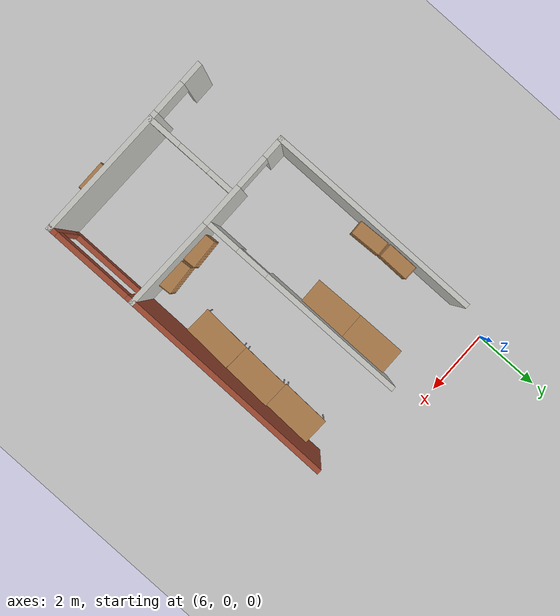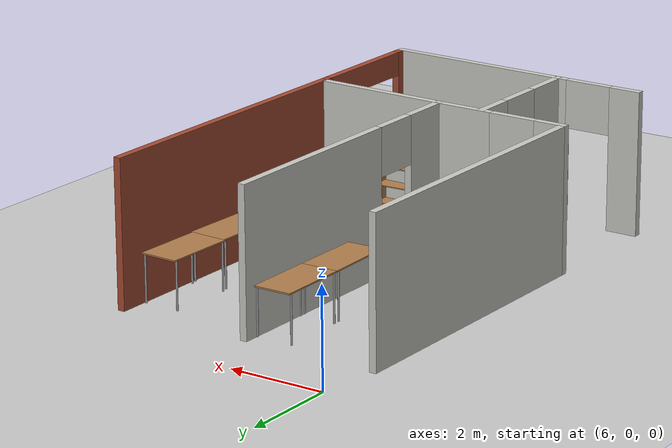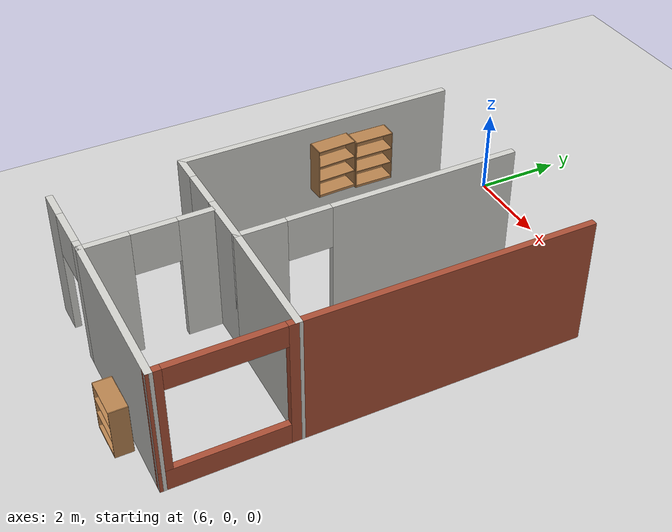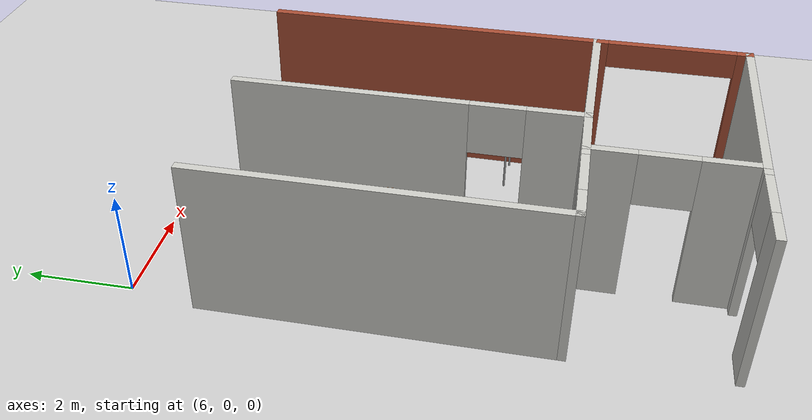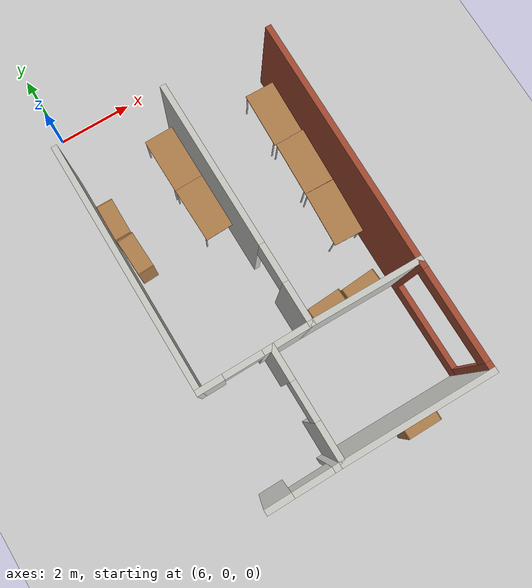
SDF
<sdf version="1.7">
 <world name="default">
  <model name="ground_plane">
   <static>1</static>
   <link name="link">
    <collision name="collision">
     <geometry><plane><normal>0 0 1</normal><size>100 100</size></plane></geometry>
     <surface><friction><ode><mu>100</mu><mu2>50</mu2></ode></friction></surface>
    </collision>
    <visual name="visual">
     <cast_shadows>0</cast_shadows>
     <geometry><plane><normal>0 0 1</normal><size>100 100</size></plane></geometry>
     <material>
      <script><uri>file://media/materials/scripts/gazebo.material</uri><name>Gazebo/Grey</name></script>
     </material>
    </visual>
   </link>
  </model>
  <model name="laboratory_world">
   <pose>0.94037 -7.07852 0 0 -0 0</pose>
   <link name="Wall_11">
    <collision name="Wall_11_Collision">
     <geometry><box><size>6.5 0.15 3</size></box></geometry>
     <pose>0 0 1.5 0 -0 0</pose>
    </collision>
    <visual name="Wall_11_Visual">
     <pose>0 0 1.5 0 -0 0</pose>
     <geometry><box><size>6.5 0.15 3</size></box></geometry>
     <material>
      <script><uri>file://media/materials/scripts/gazebo.material</uri><name>Gazebo/CeilingTiled</name></script>
      <ambient>0.921569 0.807843 0.615686 1</ambient>
     </material>
     <meta><layer>0</layer></meta>
    </visual>
    <pose>4.87322 2.5765 0 0 -0 1.5708</pose>
   </link>
   <link name="Wall_13">
    <pose>6.29822 -0.5985 0 0 -0 0</pose>
    <visual name="Wall_13_Visual_0">
     <pose>-1.1523 0 1.5 0 -0 0</pose>
     <geometry><box><size>0.695403 0.15 3</size></box></geometry>
     <material>
      <script><uri>file://media/materials/scripts/gazebo.material</uri><name>Gazebo/CeilingTiled</name></script>
      <ambient>0.921569 0.807843 0.615686 1</ambient>
     </material>
     <meta><layer>0</layer></meta>
    </visual>
    <collision name="Wall_13_Collision_0">
     <geometry><box><size>0.695403 0.15 3</size></box></geometry>
     <pose>-1.1523 0 1.5 0 -0 0</pose>
    </collision>
    <visual name="Wall_13_Visual_1">
     <pose>0.847702 0 1.5 0 -0 0</pose>
     <geometry><box><size>1.3046 0.15 3</size></box></geometry>
     <material>
      <script><uri>file://media/materials/scripts/gazebo.material</uri><name>Gazebo/CeilingTiled</name></script>
      <ambient>0.921569 0.807843 0.615686 1</ambient>
     </material>
     <meta><layer>0</layer></meta>
    </visual>
    <collision name="Wall_13_Collision_1">
     <geometry><box><size>1.3046 0.15 3</size></box></geometry>
     <pose>0.847702 0 1.5 0 -0 0</pose>
    </collision>
    <visual name="Wall_13_Visual_2">
     <pose>-0.304597 0 2.5 0 -0 0</pose>
     <geometry><box><size>1 0.15 1</size></box></geometry>
     <material>
      <script><uri>file://media/materials/scripts/gazebo.material</uri><name>Gazebo/CeilingTiled</name></script>
      <ambient>0.921569 0.807843 0.615686 1</ambient>
     </material>
     <meta><layer>0</layer></meta>
    </visual>
    <collision name="Wall_13_Collision_2">
     <geometry><box><size>1 0.15 1</size></box></geometry>
     <pose>-0.304597 0 2.5 0 -0 0</pose>
    </collision>
   </link>
   <link name="Wall_14">
    <pose>7.72322 2.5765 0 0 -0 1.5708</pose>
    <visual name="Wall_14_Visual_0">
     <pose>-2.67901 0 1.5 0 -0 0</pose>
     <geometry><box><size>1.14198 0.15 3</size></box></geometry>
     <material>
      <script><uri>file://media/materials/scripts/gazebo.material</uri><name>Gazebo/CeilingTiled</name></script>
      <ambient>0.921569 0.807843 0.615686 1</ambient>
     </material>
     <meta><layer>0</layer></meta>
    </visual>
    <collision name="Wall_14_Collision_0">
     <geometry><box><size>1.14198 0.15 3</size></box></geometry>
     <pose>-2.67901 0 1.5 0 -0 0</pose>
    </collision>
    <visual name="Wall_14_Visual_1">
     <pose>1.07099 0 1.5 0 -0 0</pose>
     <geometry><box><size>4.35802 0.15 3</size></box></geometry>
     <material>
      <script><uri>file://media/materials/scripts/gazebo.material</uri><name>Gazebo/CeilingTiled</name></script>
      <ambient>0.921569 0.807843 0.615686 1</ambient>
     </material>
     <meta><layer>0</layer></meta>
    </visual>
    <collision name="Wall_14_Collision_1">
     <geometry><box><size>4.35802 0.15 3</size></box></geometry>
     <pose>1.07099 0 1.5 0 -0 0</pose>
    </collision>
    <visual name="Wall_14_Visual_2">
     <pose>-1.60802 0 2.5 0 -0 0</pose>
     <geometry><box><size>1 0.15 1</size></box></geometry>
     <material>
      <script><uri>file://media/materials/scripts/gazebo.material</uri><name>Gazebo/CeilingTiled</name></script>
      <ambient>0.921569 0.807843 0.615686 1</ambient>
     </material>
     <meta><layer>0</layer></meta>
    </visual>
    <collision name="Wall_14_Collision_2">
     <geometry><box><size>1 0.15 1</size></box></geometry>
     <pose>-1.60802 0 2.5 0 -0 0</pose>
    </collision>
   </link>
   <link name="Wall_16">
    <collision name="Wall_16_Collision">
     <geometry><box><size>2.95339 0.15 3</size></box></geometry>
     <pose>0 0 1.5 0 -0 0</pose>
    </collision>
    <visual name="Wall_16_Visual">
     <pose>0 0 1.5 0 -0 0</pose>
     <geometry><box><size>2.95339 0.15 3</size></box></geometry>
     <material>
      <script><uri>file://media/materials/scripts/gazebo.material</uri><name>Gazebo/CeilingTiled</name></script>
      <ambient>0.921569 0.807843 0.615686 1</ambient>
     </material>
     <meta><layer>0</layer></meta>
    </visual>
    <pose>9.12472 -0.622 0 0 -0 -0.016766</pose>
   </link>
   <link name="Wall_17">
    <collision name="Wall_17_Collision">
     <geometry><box><size>6.54717 0.15 3</size></box></geometry>
     <pose>0 0 1.5 0 -0 0</pose>
    </collision>
    <visual name="Wall_17_Visual">
     <pose>0 0 1.5 0 -0 0</pose>
     <geometry><box><size>6.54717 0.15 3</size></box></geometry>
     <material>
      <script><uri>file://media/materials/scripts/gazebo.material</uri><name>Gazebo/Bricks</name></script>
      <ambient>0.760784 0.662745 0.627451 1</ambient>
     </material>
     <meta><layer>0</layer></meta>
    </visual>
    <pose>10.5497 2.553 0 0 -0 1.56345</pose>
   </link>
   <link name="Wall_21">
    <pose>10.5262 -2.0705 0 0 -0 -1.5708</pose>
    <visual name="Wall_21_Visual_0">
     <pose>-1.35631 0 1.5 0 -0 0</pose>
     <geometry><box><size>0.287384 0.15 3</size></box></geometry>
     <material>
      <script><uri>file://media/materials/scripts/gazebo.material</uri><name>Gazebo/Bricks</name></script>
      <ambient>0.760784 0.662745 0.627451 1</ambient>
     </material>
     <meta><layer>0</layer></meta>
    </visual>
    <collision name="Wall_21_Collision_0">
     <geometry><box><size>0.287384 0.15 3</size></box></geometry>
     <pose>-1.35631 0 1.5 0 -0 0</pose>
    </collision>
    <visual name="Wall_21_Visual_1">
     <pose>0.143692 0 0.25 0 -0 0</pose>
     <geometry><box><size>2.71262 0.15 0.5</size></box></geometry>
     <material>
      <script><uri>file://media/materials/scripts/gazebo.material</uri><name>Gazebo/Bricks</name></script>
      <ambient>0.760784 0.662745 0.627451 1</ambient>
     </material>
     <meta><layer>0</layer></meta>
    </visual>
    <collision name="Wall_21_Collision_1">
     <geometry><box><size>2.71262 0.15 0.5</size></box></geometry>
     <pose>0.143692 0 0.25 0 -0 0</pose>
    </collision>
    <visual name="Wall_21_Visual_2">
     <pose>1.34369 0 1.75 0 -0 0</pose>
     <geometry><box><size>0.312616 0.15 2.5</size></box></geometry>
     <material>
      <script><uri>file://media/materials/scripts/gazebo.material</uri><name>Gazebo/Bricks</name></script>
      <ambient>0.760784 0.662745 0.627451 1</ambient>
     </material>
     <meta><layer>0</layer></meta>
    </visual>
    <collision name="Wall_21_Collision_2">
     <geometry><box><size>0.312616 0.15 2.5</size></box></geometry>
     <pose>1.34369 0 1.75 0 -0 0</pose>
    </collision>
    <visual name="Wall_21_Visual_3">
     <pose>-0.012616 0 2.75 0 -0 0</pose>
     <geometry><box><size>2.4 0.15 0.5</size></box></geometry>
     <material>
      <script><uri>file://media/materials/scripts/gazebo.material</uri><name>Gazebo/Bricks</name></script>
      <ambient>0.760784 0.662745 0.627451 1</ambient>
     </material>
     <meta><layer>0</layer></meta>
    </visual>
    <collision name="Wall_21_Collision_3">
     <geometry><box><size>2.4 0.15 0.5</size></box></geometry>
     <pose>-0.012616 0 2.75 0 -0 0</pose>
    </collision>
   </link>
   <link name="Wall_22">
    <collision name="Wall_22_Collision">
     <geometry><box><size>3.95329 0.15 3</size></box></geometry>
     <pose>0 0 1.5 0 -0 0</pose>
    </collision>
    <visual name="Wall_22_Visual">
     <pose>0 0 1.5 0 -0 0</pose>
     <geometry><box><size>3.95329 0.15 3</size></box></geometry>
     <material>
      <script><uri>file://media/materials/scripts/gazebo.material</uri><name>Gazebo/CeilingTiled</name></script>
      <ambient>0.921569 0.807843 0.615686 1</ambient>
     </material>
     <meta><layer>0</layer></meta>
    </visual>
    <pose>8.62472 -3.472 0 0 -0 3.12923</pose>
   </link>
   <link name="Wall_23">
    <pose>6.72322 -2.0235 0 0 -0 1.5708</pose>
    <visual name="Wall_23_Visual_0">
     <pose>-0.956509 0 1.5 0 -0 0</pose>
     <geometry><box><size>1.08698 0.15 3</size></box></geometry>
     <material>
      <script><uri>file://media/materials/scripts/gazebo.material</uri><name>Gazebo/CeilingTiled</name></script>
      <ambient>0.921569 0.807843 0.615686 1</ambient>
     </material>
     <meta><layer>0</layer></meta>
    </visual>
    <collision name="Wall_23_Collision_0">
     <geometry><box><size>1.08698 0.15 3</size></box></geometry>
     <pose>-0.956509 0 1.5 0 -0 0</pose>
    </collision>
    <visual name="Wall_23_Visual_1">
     <pose>1.04349 0 1.5 0 -0 0</pose>
     <geometry><box><size>0.913017 0.15 3</size></box></geometry>
     <material>
      <script><uri>file://media/materials/scripts/gazebo.material</uri><name>Gazebo/CeilingTiled</name></script>
      <ambient>0.921569 0.807843 0.615686 1</ambient>
     </material>
     <meta><layer>0</layer></meta>
    </visual>
    <collision name="Wall_23_Collision_1">
     <geometry><box><size>0.913017 0.15 3</size></box></geometry>
     <pose>1.04349 0 1.5 0 -0 0</pose>
    </collision>
    <visual name="Wall_23_Visual_2">
     <pose>0.086983 0 2.5 0 -0 0</pose>
     <geometry><box><size>1 0.15 1</size></box></geometry>
     <material>
      <script><uri>file://media/materials/scripts/gazebo.material</uri><name>Gazebo/CeilingTiled</name></script>
      <ambient>0.921569 0.807843 0.615686 1</ambient>
     </material>
     <meta><layer>0</layer></meta>
    </visual>
    <collision name="Wall_23_Collision_2">
     <geometry><box><size>1 0.15 1</size></box></geometry>
     <pose>0.086983 0 2.5 0 -0 0</pose>
    </collision>
   </link>
   <link name="Wall_42">
    <pose>5.79822 -3.4485 0 0 -0 0</pose>
    <visual name="Wall_42_Visual_0">
     <pose>-0.658719 0 1.5 0 -0 0</pose>
     <geometry><box><size>0.682562 0.15 3</size></box></geometry>
     <material>
      <script><uri>file://media/materials/scripts/gazebo.material</uri><name>Gazebo/CeilingTiled</name></script>
      <ambient>0.921569 0.807843 0.615686 1</ambient>
     </material>
     <meta><layer>0</layer></meta>
    </visual>
    <collision name="Wall_42_Collision_0">
     <geometry><box><size>0.682562 0.15 3</size></box></geometry>
     <pose>-0.658719 0 1.5 0 -0 0</pose>
    </collision>
    <visual name="Wall_42_Visual_1">
     <pose>0.841281 0 1.5 0 -0 0</pose>
     <geometry><box><size>0.317438 0.15 3</size></box></geometry>
     <material>
      <script><uri>file://media/materials/scripts/gazebo.material</uri><name>Gazebo/CeilingTiled</name></script>
      <ambient>0.921569 0.807843 0.615686 1</ambient>
     </material>
     <meta><layer>0</layer></meta>
    </visual>
    <collision name="Wall_42_Collision_1">
     <geometry><box><size>0.317438 0.15 3</size></box></geometry>
     <pose>0.841281 0 1.5 0 -0 0</pose>
    </collision>
    <visual name="Wall_42_Visual_2">
     <pose>0.182562 0 2.5 0 -0 0</pose>
     <geometry><box><size>1 0.15 1</size></box></geometry>
     <material>
      <script><uri>file://media/materials/scripts/gazebo.material</uri><name>Gazebo/CeilingTiled</name></script>
      <ambient>0.921569 0.807843 0.615686 1</ambient>
     </material>
     <meta><layer>0</layer></meta>
    </visual>
    <collision name="Wall_42_Collision_2">
     <geometry><box><size>1 0.15 1</size></box></geometry>
     <pose>0.182562 0 2.5 0 -0 0</pose>
    </collision>
   </link>
   <static>1</static>
  </model>
  <model name="bookshelf_5">
   <static>1</static>
   <link name="link">
    <inertial><mass>1</mass></inertial>
    <collision name="back">
     <pose>0 0.005 0.6 0 -0 0</pose>
     <geometry><box><size>0.9 0.01 1.2</size></box></geometry>
    </collision>
    <visual name="visual1">
     <pose>0 0.005 0.6 0 -0 0</pose>
     <geometry><box><size>0.9 0.01 1.2</size></box></geometry>
     <material>
      <script><uri>file://media/materials/scripts/gazebo.material</uri><name>Gazebo/Wood</name></script>
     </material>
    </visual>
    <collision name="left_side">
     <pose>0.45 -0.195 0.6 0 -0 0</pose>
     <geometry><box><size>0.02 0.4 1.2</size></box></geometry>
    </collision>
    <visual name="visual2">
     <pose>0.45 -0.195 0.6 0 -0 0</pose>
     <geometry><box><size>0.02 0.4 1.2</size></box></geometry>
     <material>
      <script><uri>file://media/materials/scripts/gazebo.material</uri><name>Gazebo/Wood</name></script>
     </material>
    </visual>
    <collision name="right_side">
     <pose>-0.45 -0.195 0.6 0 -0 0</pose>
     <geometry><box><size>0.02 0.4 1.2</size></box></geometry>
    </collision>
    <visual name="visual3">
     <pose>-0.45 -0.195 0.6 0 -0 0</pose>
     <geometry><box><size>0.02 0.4 1.2</size></box></geometry>
     <material>
      <script><uri>file://media/materials/scripts/gazebo.material</uri><name>Gazebo/Wood</name></script>
     </material>
    </visual>
    <collision name="bottom">
     <pose>0 -0.195 0.03 0 -0 0</pose>
     <geometry><box><size>0.88 0.4 0.06</size></box></geometry>
    </collision>
    <visual name="visual4">
     <pose>0 -0.195 0.03 0 -0 0</pose>
     <geometry><box><size>0.88 0.4 0.06</size></box></geometry>
     <material>
      <script><uri>file://media/materials/scripts/gazebo.material</uri><name>Gazebo/Wood</name></script>
     </material>
    </visual>
    <collision name="top">
     <pose>0 -0.195 1.19 0 -0 0</pose>
     <geometry><box><size>0.88 0.4 0.02</size></box></geometry>
    </collision>
    <visual name="visual5">
     <pose>0 -0.195 1.19 0 -0 0</pose>
     <geometry><box><size>0.88 0.4 0.02</size></box></geometry>
     <material>
      <script><uri>file://media/materials/scripts/gazebo.material</uri><name>Gazebo/Wood</name></script>
     </material>
    </visual>
    <collision name="low_shelf">
     <pose>0 -0.195 0.43 0 -0 0</pose>
     <geometry><box><size>0.88 0.4 0.02</size></box></geometry>
    </collision>
    <visual name="visual6">
     <pose>0 -0.195 0.43 0 -0 0</pose>
     <geometry><box><size>0.88 0.4 0.02</size></box></geometry>
     <material>
      <script><uri>file://media/materials/scripts/gazebo.material</uri><name>Gazebo/Wood</name></script>
     </material>
    </visual>
    <collision name="high_shelf">
     <pose>0 -0.195 0.8 0 -0 0</pose>
     <geometry><box><size>0.88 0.4 0.02</size></box></geometry>
    </collision>
    <visual name="visual7">
     <pose>0 -0.195 0.8 0 -0 0</pose>
     <geometry><box><size>0.88 0.4 0.02</size></box></geometry>
     <material>
      <script><uri>file://media/materials/scripts/gazebo.material</uri><name>Gazebo/Wood</name></script>
     </material>
    </visual>
   </link>
   <pose>5.96495 -4.28667 1.44594 0 -0 1.61052</pose>
  </model>
  <model name="bookshelf_6">
   <static>1</static>
   <link name="link">
    <inertial><mass>1</mass></inertial>
    <collision name="back">
     <pose>0 0.005 0.6 0 -0 0</pose>
     <geometry><box><size>0.9 0.01 1.2</size></box></geometry>
    </collision>
    <visual name="visual1">
     <pose>0 0.005 0.6 0 -0 0</pose>
     <geometry><box><size>0.9 0.01 1.2</size></box></geometry>
     <material>
      <script><uri>file://media/materials/scripts/gazebo.material</uri><name>Gazebo/Wood</name></script>
     </material>
    </visual>
    <collision name="left_side">
     <pose>0.45 -0.195 0.6 0 -0 0</pose>
     <geometry><box><size>0.02 0.4 1.2</size></box></geometry>
    </collision>
    <visual name="visual2">
     <pose>0.45 -0.195 0.6 0 -0 0</pose>
     <geometry><box><size>0.02 0.4 1.2</size></box></geometry>
     <material>
      <script><uri>file://media/materials/scripts/gazebo.material</uri><name>Gazebo/Wood</name></script>
     </material>
    </visual>
    <collision name="right_side">
     <pose>-0.45 -0.195 0.6 0 -0 0</pose>
     <geometry><box><size>0.02 0.4 1.2</size></box></geometry>
    </collision>
    <visual name="visual3">
     <pose>-0.45 -0.195 0.6 0 -0 0</pose>
     <geometry><box><size>0.02 0.4 1.2</size></box></geometry>
     <material>
      <script><uri>file://media/materials/scripts/gazebo.material</uri><name>Gazebo/Wood</name></script>
     </material>
    </visual>
    <collision name="bottom">
     <pose>0 -0.195 0.03 0 -0 0</pose>
     <geometry><box><size>0.88 0.4 0.06</size></box></geometry>
    </collision>
    <visual name="visual4">
     <pose>0 -0.195 0.03 0 -0 0</pose>
     <geometry><box><size>0.88 0.4 0.06</size></box></geometry>
     <material>
      <script><uri>file://media/materials/scripts/gazebo.material</uri><name>Gazebo/Wood</name></script>
     </material>
    </visual>
    <collision name="top">
     <pose>0 -0.195 1.19 0 -0 0</pose>
     <geometry><box><size>0.88 0.4 0.02</size></box></geometry>
    </collision>
    <visual name="visual5">
     <pose>0 -0.195 1.19 0 -0 0</pose>
     <geometry><box><size>0.88 0.4 0.02</size></box></geometry>
     <material>
      <script><uri>file://media/materials/scripts/gazebo.material</uri><name>Gazebo/Wood</name></script>
     </material>
    </visual>
    <collision name="low_shelf">
     <pose>0 -0.195 0.43 0 -0 0</pose>
     <geometry><box><size>0.88 0.4 0.02</size></box></geometry>
    </collision>
    <visual name="visual6">
     <pose>0 -0.195 0.43 0 -0 0</pose>
     <geometry><box><size>0.88 0.4 0.02</size></box></geometry>
     <material>
      <script><uri>file://media/materials/scripts/gazebo.material</uri><name>Gazebo/Wood</name></script>
     </material>
    </visual>
    <collision name="high_shelf">
     <pose>0 -0.195 0.8 0 -0 0</pose>
     <geometry><box><size>0.88 0.4 0.02</size></box></geometry>
    </collision>
    <visual name="visual7">
     <pose>0 -0.195 0.8 0 -0 0</pose>
     <geometry><box><size>0.88 0.4 0.02</size></box></geometry>
     <material>
      <script><uri>file://media/materials/scripts/gazebo.material</uri><name>Gazebo/Wood</name></script>
     </material>
    </visual>
   </link>
   <pose>5.93215 -3.31924 1.37705 0 -0 1.56034</pose>
  </model>
  <model name="bookshelf_7">
   <static>1</static>
   <link name="link">
    <inertial><mass>1</mass></inertial>
    <collision name="back">
     <pose>0 0.005 0.6 0 -0 0</pose>
     <geometry><box><size>0.9 0.01 1.2</size></box></geometry>
    </collision>
    <visual name="visual1">
     <pose>0 0.005 0.6 0 -0 0</pose>
     <geometry><box><size>0.9 0.01 1.2</size></box></geometry>
     <material>
      <script><uri>file://media/materials/scripts/gazebo.material</uri><name>Gazebo/Wood</name></script>
     </material>
    </visual>
    <collision name="left_side">
     <pose>0.45 -0.195 0.6 0 -0 0</pose>
     <geometry><box><size>0.02 0.4 1.2</size></box></geometry>
    </collision>
    <visual name="visual2">
     <pose>0.45 -0.195 0.6 0 -0 0</pose>
     <geometry><box><size>0.02 0.4 1.2</size></box></geometry>
     <material>
      <script><uri>file://media/materials/scripts/gazebo.material</uri><name>Gazebo/Wood</name></script>
     </material>
    </visual>
    <collision name="right_side">
     <pose>-0.45 -0.195 0.6 0 -0 0</pose>
     <geometry><box><size>0.02 0.4 1.2</size></box></geometry>
    </collision>
    <visual name="visual3">
     <pose>-0.45 -0.195 0.6 0 -0 0</pose>
     <geometry><box><size>0.02 0.4 1.2</size></box></geometry>
     <material>
      <script><uri>file://media/materials/scripts/gazebo.material</uri><name>Gazebo/Wood</name></script>
     </material>
    </visual>
    <collision name="bottom">
     <pose>0 -0.195 0.03 0 -0 0</pose>
     <geometry><box><size>0.88 0.4 0.06</size></box></geometry>
    </collision>
    <visual name="visual4">
     <pose>0 -0.195 0.03 0 -0 0</pose>
     <geometry><box><size>0.88 0.4 0.06</size></box></geometry>
     <material>
      <script><uri>file://media/materials/scripts/gazebo.material</uri><name>Gazebo/Wood</name></script>
     </material>
    </visual>
    <collision name="top">
     <pose>0 -0.195 1.19 0 -0 0</pose>
     <geometry><box><size>0.88 0.4 0.02</size></box></geometry>
    </collision>
    <visual name="visual5">
     <pose>0 -0.195 1.19 0 -0 0</pose>
     <geometry><box><size>0.88 0.4 0.02</size></box></geometry>
     <material>
      <script><uri>file://media/materials/scripts/gazebo.material</uri><name>Gazebo/Wood</name></script>
     </material>
    </visual>
    <collision name="low_shelf">
     <pose>0 -0.195 0.43 0 -0 0</pose>
     <geometry><box><size>0.88 0.4 0.02</size></box></geometry>
    </collision>
    <visual name="visual6">
     <pose>0 -0.195 0.43 0 -0 0</pose>
     <geometry><box><size>0.88 0.4 0.02</size></box></geometry>
     <material>
      <script><uri>file://media/materials/scripts/gazebo.material</uri><name>Gazebo/Wood</name></script>
     </material>
    </visual>
    <collision name="high_shelf">
     <pose>0 -0.195 0.8 0 -0 0</pose>
     <geometry><box><size>0.88 0.4 0.02</size></box></geometry>
    </collision>
    <visual name="visual7">
     <pose>0 -0.195 0.8 0 -0 0</pose>
     <geometry><box><size>0.88 0.4 0.02</size></box></geometry>
     <material>
      <script><uri>file://media/materials/scripts/gazebo.material</uri><name>Gazebo/Wood</name></script>
     </material>
    </visual>
   </link>
   <pose>9.42742 -7.66853 0.403393 0 0 -3.08973</pose>
  </model>
  <model name="bookshelf_8">
   <static>1</static>
   <link name="link">
    <inertial><mass>1</mass></inertial>
    <collision name="back">
     <pose>0 0.005 0.6 0 -0 0</pose>
     <geometry><box><size>0.9 0.01 1.2</size></box></geometry>
    </collision>
    <visual name="visual1">
     <pose>0 0.005 0.6 0 -0 0</pose>
     <geometry><box><size>0.9 0.01 1.2</size></box></geometry>
     <material>
      <script><uri>file://media/materials/scripts/gazebo.material</uri><name>Gazebo/Wood</name></script>
     </material>
    </visual>
    <collision name="left_side">
     <pose>0.45 -0.195 0.6 0 -0 0</pose>
     <geometry><box><size>0.02 0.4 1.2</size></box></geometry>
    </collision>
    <visual name="visual2">
     <pose>0.45 -0.195 0.6 0 -0 0</pose>
     <geometry><box><size>0.02 0.4 1.2</size></box></geometry>
     <material>
      <script><uri>file://media/materials/scripts/gazebo.material</uri><name>Gazebo/Wood</name></script>
     </material>
    </visual>
    <collision name="right_side">
     <pose>-0.45 -0.195 0.6 0 -0 0</pose>
     <geometry><box><size>0.02 0.4 1.2</size></box></geometry>
    </collision>
    <visual name="visual3">
     <pose>-0.45 -0.195 0.6 0 -0 0</pose>
     <geometry><box><size>0.02 0.4 1.2</size></box></geometry>
     <material>
      <script><uri>file://media/materials/scripts/gazebo.material</uri><name>Gazebo/Wood</name></script>
     </material>
    </visual>
    <collision name="bottom">
     <pose>0 -0.195 0.03 0 -0 0</pose>
     <geometry><box><size>0.88 0.4 0.06</size></box></geometry>
    </collision>
    <visual name="visual4">
     <pose>0 -0.195 0.03 0 -0 0</pose>
     <geometry><box><size>0.88 0.4 0.06</size></box></geometry>
     <material>
      <script><uri>file://media/materials/scripts/gazebo.material</uri><name>Gazebo/Wood</name></script>
     </material>
    </visual>
    <collision name="top">
     <pose>0 -0.195 1.19 0 -0 0</pose>
     <geometry><box><size>0.88 0.4 0.02</size></box></geometry>
    </collision>
    <visual name="visual5">
     <pose>0 -0.195 1.19 0 -0 0</pose>
     <geometry><box><size>0.88 0.4 0.02</size></box></geometry>
     <material>
      <script><uri>file://media/materials/scripts/gazebo.material</uri><name>Gazebo/Wood</name></script>
     </material>
    </visual>
    <collision name="low_shelf">
     <pose>0 -0.195 0.43 0 -0 0</pose>
     <geometry><box><size>0.88 0.4 0.02</size></box></geometry>
    </collision>
    <visual name="visual6">
     <pose>0 -0.195 0.43 0 -0 0</pose>
     <geometry><box><size>0.88 0.4 0.02</size></box></geometry>
     <material>
      <script><uri>file://media/materials/scripts/gazebo.material</uri><name>Gazebo/Wood</name></script>
     </material>
    </visual>
    <collision name="high_shelf">
     <pose>0 -0.195 0.8 0 -0 0</pose>
     <geometry><box><size>0.88 0.4 0.02</size></box></geometry>
    </collision>
    <visual name="visual7">
     <pose>0 -0.195 0.8 0 -0 0</pose>
     <geometry><box><size>0.88 0.4 0.02</size></box></geometry>
     <material>
      <script><uri>file://media/materials/scripts/gazebo.material</uri><name>Gazebo/Wood</name></script>
     </material>
    </visual>
   </link>
   <pose>10.389 -7.68331 0.380417 0 0 -3.07707</pose>
  </model>
  <model name="bookshelf_10">
   <static>1</static>
   <link name="link">
    <inertial><mass>1</mass></inertial>
    <collision name="back">
     <pose>0 0.005 0.6 0 -0 0</pose>
     <geometry><box><size>0.9 0.01 1.2</size></box></geometry>
    </collision>
    <visual name="visual1">
     <pose>0 0.005 0.6 0 -0 0</pose>
     <geometry><box><size>0.9 0.01 1.2</size></box></geometry>
     <material>
      <script><uri>file://media/materials/scripts/gazebo.material</uri><name>Gazebo/Wood</name></script>
     </material>
    </visual>
    <collision name="left_side">
     <pose>0.45 -0.195 0.6 0 -0 0</pose>
     <geometry><box><size>0.02 0.4 1.2</size></box></geometry>
    </collision>
    <visual name="visual2">
     <pose>0.45 -0.195 0.6 0 -0 0</pose>
     <geometry><box><size>0.02 0.4 1.2</size></box></geometry>
     <material>
      <script><uri>file://media/materials/scripts/gazebo.material</uri><name>Gazebo/Wood</name></script>
     </material>
    </visual>
    <collision name="right_side">
     <pose>-0.45 -0.195 0.6 0 -0 0</pose>
     <geometry><box><size>0.02 0.4 1.2</size></box></geometry>
    </collision>
    <visual name="visual3">
     <pose>-0.45 -0.195 0.6 0 -0 0</pose>
     <geometry><box><size>0.02 0.4 1.2</size></box></geometry>
     <material>
      <script><uri>file://media/materials/scripts/gazebo.material</uri><name>Gazebo/Wood</name></script>
     </material>
    </visual>
    <collision name="bottom">
     <pose>0 -0.195 0.03 0 -0 0</pose>
     <geometry><box><size>0.88 0.4 0.06</size></box></geometry>
    </collision>
    <visual name="visual4">
     <pose>0 -0.195 0.03 0 -0 0</pose>
     <geometry><box><size>0.88 0.4 0.06</size></box></geometry>
     <material>
      <script><uri>file://media/materials/scripts/gazebo.material</uri><name>Gazebo/Wood</name></script>
     </material>
    </visual>
    <collision name="top">
     <pose>0 -0.195 1.19 0 -0 0</pose>
     <geometry><box><size>0.88 0.4 0.02</size></box></geometry>
    </collision>
    <visual name="visual5">
     <pose>0 -0.195 1.19 0 -0 0</pose>
     <geometry><box><size>0.88 0.4 0.02</size></box></geometry>
     <material>
      <script><uri>file://media/materials/scripts/gazebo.material</uri><name>Gazebo/Wood</name></script>
     </material>
    </visual>
    <collision name="low_shelf">
     <pose>0 -0.195 0.43 0 -0 0</pose>
     <geometry><box><size>0.88 0.4 0.02</size></box></geometry>
    </collision>
    <visual name="visual6">
     <pose>0 -0.195 0.43 0 -0 0</pose>
     <geometry><box><size>0.88 0.4 0.02</size></box></geometry>
     <material>
      <script><uri>file://media/materials/scripts/gazebo.material</uri><name>Gazebo/Wood</name></script>
     </material>
    </visual>
    <collision name="high_shelf">
     <pose>0 -0.195 0.8 0 -0 0</pose>
     <geometry><box><size>0.88 0.4 0.02</size></box></geometry>
    </collision>
    <visual name="visual7">
     <pose>0 -0.195 0.8 0 -0 0</pose>
     <geometry><box><size>0.88 0.4 0.02</size></box></geometry>
     <material>
      <script><uri>file://media/materials/scripts/gazebo.material</uri><name>Gazebo/Wood</name></script>
     </material>
    </visual>
   </link>
   <pose>9.89039 -10.7082 0 0 -0 0</pose>
  </model>
  <model name="table_4">
   <static>1</static>
   <link name="link">
    <collision name="surface">
     <pose>0 0 1 0 -0 0</pose>
     <geometry><box><size>1.5 0.8 0.03</size></box></geometry>
     <surface><friction><ode><mu>0.6</mu><mu2>0.6</mu2></ode></friction></surface>
    </collision>
    <visual name="visual1">
     <pose>0 0 1 0 -0 0</pose>
     <geometry><box><size>1.5 0.8 0.03</size></box></geometry>
     <material>
      <script><uri>file://media/materials/scripts/gazebo.material</uri><name>Gazebo/Wood</name></script>
     </material>
    </visual>
    <collision name="front_left_leg">
     <pose>0.68 0.38 0.5 0 -0 0</pose>
     <geometry><cylinder><radius>0.02</radius><length>1</length></cylinder></geometry>
    </collision>
    <visual name="front_left_leg">
     <pose>0.68 0.38 0.5 0 -0 0</pose>
     <geometry><cylinder><radius>0.02</radius><length>1</length></cylinder></geometry>
     <material>
      <script><uri>file://media/materials/scripts/gazebo.material</uri><name>Gazebo/Grey</name></script>
     </material>
    </visual>
    <collision name="front_right_leg">
     <pose>0.68 -0.38 0.5 0 -0 0</pose>
     <geometry><cylinder><radius>0.02</radius><length>1</length></cylinder></geometry>
    </collision>
    <visual name="front_right_leg">
     <pose>0.68 -0.38 0.5 0 -0 0</pose>
     <geometry><cylinder><radius>0.02</radius><length>1</length></cylinder></geometry>
     <material>
      <script><uri>file://media/materials/scripts/gazebo.material</uri><name>Gazebo/Grey</name></script>
     </material>
    </visual>
    <collision name="back_right_leg">
     <pose>-0.68 -0.38 0.5 0 -0 0</pose>
     <geometry><cylinder><radius>0.02</radius><length>1</length></cylinder></geometry>
    </collision>
    <visual name="back_right_leg">
     <pose>-0.68 -0.38 0.5 0 -0 0</pose>
     <geometry><cylinder><radius>0.02</radius><length>1</length></cylinder></geometry>
     <material>
      <script><uri>file://media/materials/scripts/gazebo.material</uri><name>Gazebo/Grey</name></script>
     </material>
    </visual>
    <collision name="back_left_leg">
     <pose>-0.68 0.38 0.5 0 -0 0</pose>
     <geometry><cylinder><radius>0.02</radius><length>1</length></cylinder></geometry>
    </collision>
    <visual name="back_left_leg">
     <pose>-0.68 0.38 0.5 0 -0 0</pose>
     <geometry><cylinder><radius>0.02</radius><length>1</length></cylinder></geometry>
     <material>
      <script><uri>file://media/materials/scripts/gazebo.material</uri><name>Gazebo/Grey</name></script>
     </material>
    </visual>
   </link>
   <pose>8.20225 -2.25557 0 0 -0 1.57942</pose>
  </model>
  <model name="table_6">
   <static>1</static>
   <link name="link">
    <collision name="surface">
     <pose>0 0 1 0 -0 0</pose>
     <geometry><box><size>1.5 0.8 0.03</size></box></geometry>
     <surface><friction><ode><mu>0.6</mu><mu2>0.6</mu2></ode></friction></surface>
    </collision>
    <visual name="visual1">
     <pose>0 0 1 0 -0 0</pose>
     <geometry><box><size>1.5 0.8 0.03</size></box></geometry>
     <material>
      <script><uri>file://media/materials/scripts/gazebo.material</uri><name>Gazebo/Wood</name></script>
     </material>
    </visual>
    <collision name="front_left_leg">
     <pose>0.68 0.38 0.5 0 -0 0</pose>
     <geometry><cylinder><radius>0.02</radius><length>1</length></cylinder></geometry>
    </collision>
    <visual name="front_left_leg">
     <pose>0.68 0.38 0.5 0 -0 0</pose>
     <geometry><cylinder><radius>0.02</radius><length>1</length></cylinder></geometry>
     <material>
      <script><uri>file://media/materials/scripts/gazebo.material</uri><name>Gazebo/Grey</name></script>
     </material>
    </visual>
    <collision name="front_right_leg">
     <pose>0.68 -0.38 0.5 0 -0 0</pose>
     <geometry><cylinder><radius>0.02</radius><length>1</length></cylinder></geometry>
    </collision>
    <visual name="front_right_leg">
     <pose>0.68 -0.38 0.5 0 -0 0</pose>
     <geometry><cylinder><radius>0.02</radius><length>1</length></cylinder></geometry>
     <material>
      <script><uri>file://media/materials/scripts/gazebo.material</uri><name>Gazebo/Grey</name></script>
     </material>
    </visual>
    <collision name="back_right_leg">
     <pose>-0.68 -0.38 0.5 0 -0 0</pose>
     <geometry><cylinder><radius>0.02</radius><length>1</length></cylinder></geometry>
    </collision>
    <visual name="back_right_leg">
     <pose>-0.68 -0.38 0.5 0 -0 0</pose>
     <geometry><cylinder><radius>0.02</radius><length>1</length></cylinder></geometry>
     <material>
      <script><uri>file://media/materials/scripts/gazebo.material</uri><name>Gazebo/Grey</name></script>
     </material>
    </visual>
    <collision name="back_left_leg">
     <pose>-0.68 0.38 0.5 0 -0 0</pose>
     <geometry><cylinder><radius>0.02</radius><length>1</length></cylinder></geometry>
    </collision>
    <visual name="back_left_leg">
     <pose>-0.68 0.38 0.5 0 -0 0</pose>
     <geometry><cylinder><radius>0.02</radius><length>1</length></cylinder></geometry>
     <material>
      <script><uri>file://media/materials/scripts/gazebo.material</uri><name>Gazebo/Grey</name></script>
     </material>
    </visual>
   </link>
   <pose>11.005 -2.53785 0 0 -0 1.53995</pose>
  </model>
  <model name="table_7">
   <static>1</static>
   <link name="link">
    <collision name="surface">
     <pose>0 0 1 0 -0 0</pose>
     <geometry><box><size>1.5 0.8 0.03</size></box></geometry>
     <surface><friction><ode><mu>0.6</mu><mu2>0.6</mu2></ode></friction></surface>
    </collision>
    <visual name="visual1">
     <pose>0 0 1 0 -0 0</pose>
     <geometry><box><size>1.5 0.8 0.03</size></box></geometry>
     <material>
      <script><uri>file://media/materials/scripts/gazebo.material</uri><name>Gazebo/Wood</name></script>
     </material>
    </visual>
    <collision name="front_left_leg">
     <pose>0.68 0.38 0.5 0 -0 0</pose>
     <geometry><cylinder><radius>0.02</radius><length>1</length></cylinder></geometry>
    </collision>
    <visual name="front_left_leg">
     <pose>0.68 0.38 0.5 0 -0 0</pose>
     <geometry><cylinder><radius>0.02</radius><length>1</length></cylinder></geometry>
     <material>
      <script><uri>file://media/materials/scripts/gazebo.material</uri><name>Gazebo/Grey</name></script>
     </material>
    </visual>
    <collision name="front_right_leg">
     <pose>0.68 -0.38 0.5 0 -0 0</pose>
     <geometry><cylinder><radius>0.02</radius><length>1</length></cylinder></geometry>
    </collision>
    <visual name="front_right_leg">
     <pose>0.68 -0.38 0.5 0 -0 0</pose>
     <geometry><cylinder><radius>0.02</radius><length>1</length></cylinder></geometry>
     <material>
      <script><uri>file://media/materials/scripts/gazebo.material</uri><name>Gazebo/Grey</name></script>
     </material>
    </visual>
    <collision name="back_right_leg">
     <pose>-0.68 -0.38 0.5 0 -0 0</pose>
     <geometry><cylinder><radius>0.02</radius><length>1</length></cylinder></geometry>
    </collision>
    <visual name="back_right_leg">
     <pose>-0.68 -0.38 0.5 0 -0 0</pose>
     <geometry><cylinder><radius>0.02</radius><length>1</length></cylinder></geometry>
     <material>
      <script><uri>file://media/materials/scripts/gazebo.material</uri><name>Gazebo/Grey</name></script>
     </material>
    </visual>
    <collision name="back_left_leg">
     <pose>-0.68 0.38 0.5 0 -0 0</pose>
     <geometry><cylinder><radius>0.02</radius><length>1</length></cylinder></geometry>
    </collision>
    <visual name="back_left_leg">
     <pose>-0.68 0.38 0.5 0 -0 0</pose>
     <geometry><cylinder><radius>0.02</radius><length>1</length></cylinder></geometry>
     <material>
      <script><uri>file://media/materials/scripts/gazebo.material</uri><name>Gazebo/Grey</name></script>
     </material>
    </visual>
   </link>
   <pose>10.9293 -5.53233 0 0 -0 1.52328</pose>
  </model>
  <model name="table_14">
   <static>1</static>
   <link name="link">
    <collision name="surface">
     <pose>0 0 1 0 -0 0</pose>
     <geometry><box><size>1.5 0.8 0.03</size></box></geometry>
     <surface><friction><ode><mu>0.6</mu><mu2>0.6</mu2></ode></friction></surface>
    </collision>
    <visual name="visual1">
     <pose>0 0 1 0 -0 0</pose>
     <geometry><box><size>1.5 0.8 0.03</size></box></geometry>
     <material>
      <script><uri>file://media/materials/scripts/gazebo.material</uri><name>Gazebo/Wood</name></script>
     </material>
    </visual>
    <collision name="front_left_leg">
     <pose>0.68 0.38 0.5 0 -0 0</pose>
     <geometry><cylinder><radius>0.02</radius><length>1</length></cylinder></geometry>
    </collision>
    <visual name="front_left_leg">
     <pose>0.68 0.38 0.5 0 -0 0</pose>
     <geometry><cylinder><radius>0.02</radius><length>1</length></cylinder></geometry>
     <material>
      <script><uri>file://media/materials/scripts/gazebo.material</uri><name>Gazebo/Grey</name></script>
     </material>
    </visual>
    <collision name="front_right_leg">
     <pose>0.68 -0.38 0.5 0 -0 0</pose>
     <geometry><cylinder><radius>0.02</radius><length>1</length></cylinder></geometry>
    </collision>
    <visual name="front_right_leg">
     <pose>0.68 -0.38 0.5 0 -0 0</pose>
     <geometry><cylinder><radius>0.02</radius><length>1</length></cylinder></geometry>
     <material>
      <script><uri>file://media/materials/scripts/gazebo.material</uri><name>Gazebo/Grey</name></script>
     </material>
    </visual>
    <collision name="back_right_leg">
     <pose>-0.68 -0.38 0.5 0 -0 0</pose>
     <geometry><cylinder><radius>0.02</radius><length>1</length></cylinder></geometry>
    </collision>
    <visual name="back_right_leg">
     <pose>-0.68 -0.38 0.5 0 -0 0</pose>
     <geometry><cylinder><radius>0.02</radius><length>1</length></cylinder></geometry>
     <material>
      <script><uri>file://media/materials/scripts/gazebo.material</uri><name>Gazebo/Grey</name></script>
     </material>
    </visual>
    <collision name="back_left_leg">
     <pose>-0.68 0.38 0.5 0 -0 0</pose>
     <geometry><cylinder><radius>0.02</radius><length>1</length></cylinder></geometry>
    </collision>
    <visual name="back_left_leg">
     <pose>-0.68 0.38 0.5 0 -0 0</pose>
     <geometry><cylinder><radius>0.02</radius><length>1</length></cylinder></geometry>
     <material>
      <script><uri>file://media/materials/scripts/gazebo.material</uri><name>Gazebo/Grey</name></script>
     </material>
    </visual>
   </link>
   <pose>10.9897 -4.02776 0 0 -0 1.53557</pose>
  </model>
  <model name="table_16">
   <static>1</static>
   <link name="link">
    <collision name="surface">
     <pose>0 0 1 0 -0 0</pose>
     <geometry><box><size>1.5 0.8 0.03</size></box></geometry>
     <surface><friction><ode><mu>0.6</mu><mu2>0.6</mu2></ode></friction></surface>
    </collision>
    <visual name="visual1">
     <pose>0 0 1 0 -0 0</pose>
     <geometry><box><size>1.5 0.8 0.03</size></box></geometry>
     <material>
      <script><uri>file://media/materials/scripts/gazebo.material</uri><name>Gazebo/Wood</name></script>
     </material>
    </visual>
    <collision name="front_left_leg">
     <pose>0.68 0.38 0.5 0 -0 0</pose>
     <geometry><cylinder><radius>0.02</radius><length>1</length></cylinder></geometry>
    </collision>
    <visual name="front_left_leg">
     <pose>0.68 0.38 0.5 0 -0 0</pose>
     <geometry><cylinder><radius>0.02</radius><length>1</length></cylinder></geometry>
     <material>
      <script><uri>file://media/materials/scripts/gazebo.material</uri><name>Gazebo/Grey</name></script>
     </material>
    </visual>
    <collision name="front_right_leg">
     <pose>0.68 -0.38 0.5 0 -0 0</pose>
     <geometry><cylinder><radius>0.02</radius><length>1</length></cylinder></geometry>
    </collision>
    <visual name="front_right_leg">
     <pose>0.68 -0.38 0.5 0 -0 0</pose>
     <geometry><cylinder><radius>0.02</radius><length>1</length></cylinder></geometry>
     <material>
      <script><uri>file://media/materials/scripts/gazebo.material</uri><name>Gazebo/Grey</name></script>
     </material>
    </visual>
    <collision name="back_right_leg">
     <pose>-0.68 -0.38 0.5 0 -0 0</pose>
     <geometry><cylinder><radius>0.02</radius><length>1</length></cylinder></geometry>
    </collision>
    <visual name="back_right_leg">
     <pose>-0.68 -0.38 0.5 0 -0 0</pose>
     <geometry><cylinder><radius>0.02</radius><length>1</length></cylinder></geometry>
     <material>
      <script><uri>file://media/materials/scripts/gazebo.material</uri><name>Gazebo/Grey</name></script>
     </material>
    </visual>
    <collision name="back_left_leg">
     <pose>-0.68 0.38 0.5 0 -0 0</pose>
     <geometry><cylinder><radius>0.02</radius><length>1</length></cylinder></geometry>
    </collision>
    <visual name="back_left_leg">
     <pose>-0.68 0.38 0.5 0 -0 0</pose>
     <geometry><cylinder><radius>0.02</radius><length>1</length></cylinder></geometry>
     <material>
      <script><uri>file://media/materials/scripts/gazebo.material</uri><name>Gazebo/Grey</name></script>
     </material>
    </visual>
   </link>
   <pose>8.22604 -3.75167 0 0 -0 1.59169</pose>
  </model>
 </world>
</sdf>
